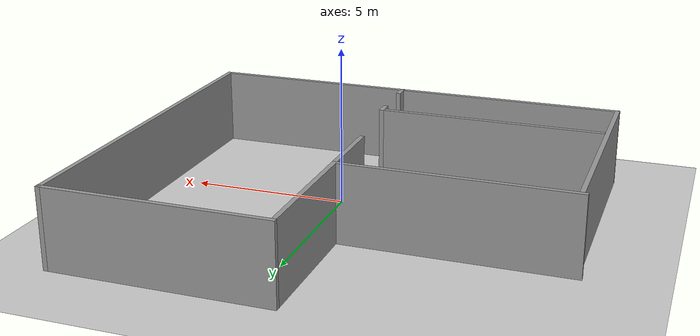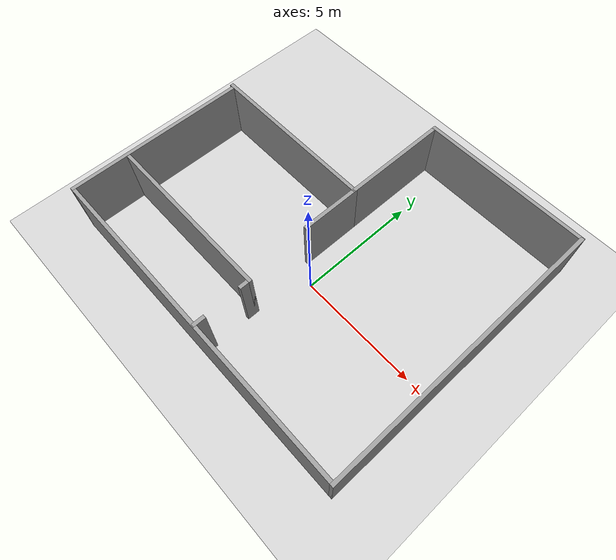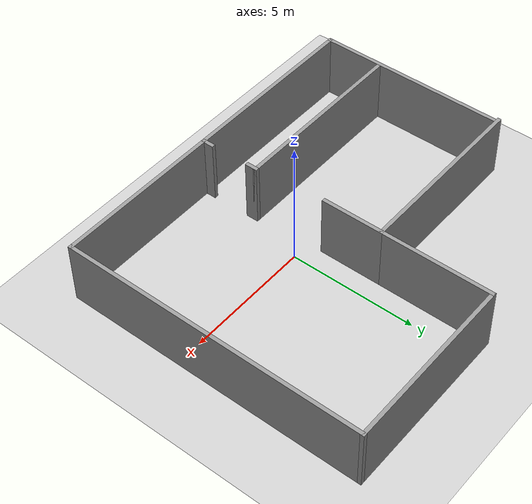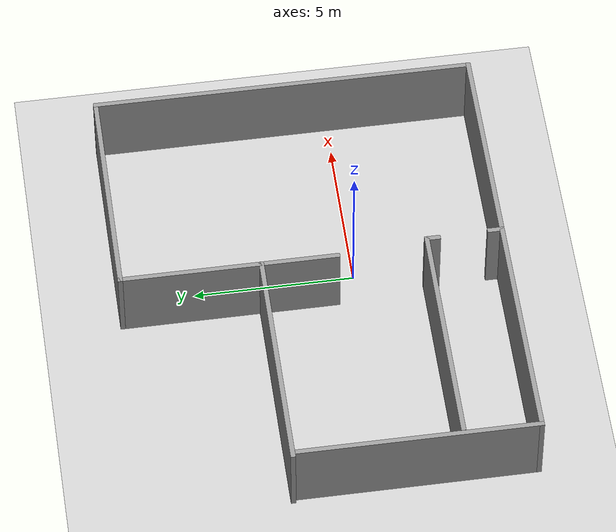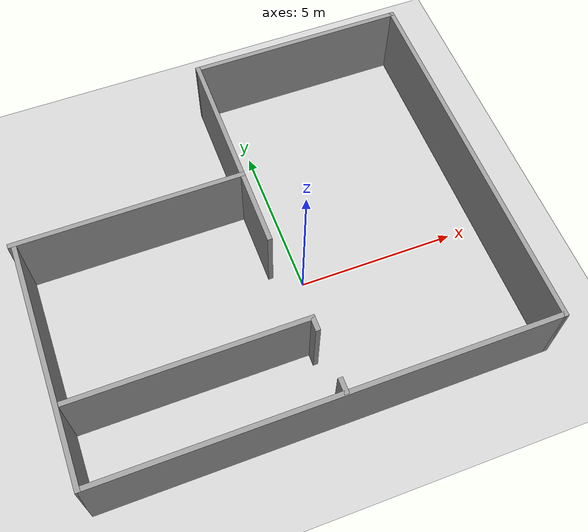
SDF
<sdf version="1.7">
 <world name="default">
  <light name="sun" type="directional">
   <pose>0 0 10 0 -0 0</pose>
   <diffuse>0.8 0.8 0.8 1</diffuse>
   <specular>0.2 0.2 0.2 1</specular>
   <attenuation>
    <range>1000</range>
    <constant>0.9</constant>
    <linear>0.01</linear>
    <quadratic>0.001</quadratic>
   </attenuation>
   <direction>-0.5 0.1 -0.9</direction>
   <spot><inner_angle>0</inner_angle><outer_angle>0</outer_angle><falloff>0</falloff></spot>
  </light>
  <model name="ground_plane">
   <static>1</static>
   <link name="link">
    <collision name="collision">
     <geometry><plane><normal>0 0 1</normal><size>100 100</size></plane></geometry>
     <surface>
      <contact><collide_bitmask>65535</collide_bitmask></contact>
      <friction><ode><mu>100</mu><mu2>50</mu2></ode></friction>
     </surface>
    </collision>
    <visual name="visual">
     <cast_shadows>0</cast_shadows>
     <geometry><plane><normal>0 0 1</normal><size>100 100</size></plane></geometry>
     <material>
      <script><uri>file://media/materials/scripts/gazebo.material</uri><name>Gazebo/Grey</name></script>
     </material>
    </visual>
   </link>
  </model>
  <gravity>0 0 -9.8</gravity>
  <magnetic_field>6e-06 2.3e-05 -4.2e-05</magnetic_field>
  <atmosphere type="adiabatic"/>
  <physics type="ode">
   <max_step_size>0.001</max_step_size>
   <real_time_factor>1</real_time_factor>
   <real_time_update_rate>1000</real_time_update_rate>
  </physics>
  <scene><ambient>0.4 0.4 0.4 1</ambient><background>0.7 0.7 0.7 1</background><shadows>1</shadows></scene>
  <spherical_coordinates>
   <surface_model>EARTH_WGS84</surface_model>
   <latitude_deg>0</latitude_deg>
   <longitude_deg>0</longitude_deg>
   <elevation>0</elevation>
   <heading_deg>0</heading_deg>
  </spherical_coordinates>
  <model name="Untitled">
   <pose>-0.982656 1.40265 0 0 -0 0</pose>
   <link name="Wall_0">
    <collision name="Wall_0_Collision">
     <geometry><box><size>14 0.15 2.5</size></box></geometry>
     <pose>0 0 1.25 0 -0 0</pose>
    </collision>
    <visual name="Wall_0_Visual">
     <pose>0 0 1.25 0 -0 0</pose>
     <geometry><box><size>14 0.15 2.5</size></box></geometry>
     <material>
      <script><uri>file://media/materials/scripts/gazebo.material</uri><name>Gazebo/Grey</name></script>
      <ambient>1 1 1 1</ambient>
     </material>
     <meta><layer>0</layer></meta>
    </visual>
    <pose>0.05 -5.925 0 0 -0 0</pose>
   </link>
   <link name="Wall_14">
    <collision name="Wall_14_Collision">
     <geometry><box><size>7.5 0.15 2.5</size></box></geometry>
     <pose>0 0 1.25 0 -0 0</pose>
    </collision>
    <visual name="Wall_14_Visual">
     <pose>0 0 1.25 0 -0 0</pose>
     <geometry><box><size>7.5 0.15 2.5</size></box></geometry>
     <material>
      <script><uri>file://media/materials/scripts/gazebo.material</uri><name>Gazebo/Grey</name></script>
      <ambient>1 1 1 1</ambient>
     </material>
     <meta><layer>0</layer></meta>
    </visual>
    <pose>-6.875 -2.25 0 0 -0 1.5708</pose>
   </link>
   <link name="Wall_17">
    <collision name="Wall_17_Collision">
     <geometry><box><size>7.25 0.15 2.5</size></box></geometry>
     <pose>0 0 1.25 0 -0 0</pose>
    </collision>
    <visual name="Wall_17_Visual">
     <pose>0 0 1.25 0 -0 0</pose>
     <geometry><box><size>7.25 0.15 2.5</size></box></geometry>
     <material>
      <script><uri>file://media/materials/scripts/gazebo.material</uri><name>Gazebo/Grey</name></script>
      <ambient>1 1 1 1</ambient>
     </material>
     <meta><layer>0</layer></meta>
    </visual>
    <pose>-3.425 1.575 0 0 -0 3.14159</pose>
   </link>
   <link name="Wall_20">
    <collision name="Wall_20_Collision">
     <geometry><box><size>7.25 0.15 2.5</size></box></geometry>
     <pose>0 0 1.25 0 -0 0</pose>
    </collision>
    <visual name="Wall_20_Visual">
     <pose>0 0 1.25 0 -0 0</pose>
     <geometry><box><size>7.25 0.15 2.5</size></box></geometry>
     <material>
      <script><uri>file://media/materials/scripts/gazebo.material</uri><name>Gazebo/Grey</name></script>
      <ambient>1 1 1 1</ambient>
     </material>
     <meta><layer>0</layer></meta>
    </visual>
    <pose>-3.16931 -3.5804 0 0 -0 3.14159</pose>
   </link>
   <link name="Wall_23">
    <collision name="Wall_23_Collision">
     <geometry><box><size>0.5 0.15 2.5</size></box></geometry>
     <pose>0 0 1.25 0 -0 0</pose>
    </collision>
    <visual name="Wall_23_Visual">
     <pose>0 0 1.25 0 -0 0</pose>
     <geometry><box><size>0.5 0.15 2.5</size></box></geometry>
     <material>
      <script><uri>file://media/materials/scripts/gazebo.material</uri><name>Gazebo/Grey</name></script>
      <ambient>1 1 1 1</ambient>
     </material>
     <meta><layer>0</layer></meta>
    </visual>
    <pose>0.380689 -3.7554 0 0 -0 -1.5708</pose>
   </link>
   <link name="Wall_25">
    <collision name="Wall_25_Collision">
     <geometry><box><size>0.5 0.15 2.5</size></box></geometry>
     <pose>0 0 1.25 0 -0 0</pose>
    </collision>
    <visual name="Wall_25_Visual">
     <pose>0 0 1.25 0 -0 0</pose>
     <geometry><box><size>0.5 0.15 2.5</size></box></geometry>
     <material>
      <script><uri>file://media/materials/scripts/gazebo.material</uri><name>Gazebo/Grey</name></script>
      <ambient>1 1 1 1</ambient>
     </material>
     <meta><layer>0</layer></meta>
    </visual>
    <pose>0.423732 -5.71892 0 0 -0 1.5708</pose>
   </link>
   <link name="Wall_27">
    <collision name="Wall_27_Collision">
     <geometry><box><size>2.5 0.15 2.5</size></box></geometry>
     <pose>0 0 1.25 0 -0 0</pose>
    </collision>
    <visual name="Wall_27_Visual">
     <pose>0 0 1.25 0 -0 0</pose>
     <geometry><box><size>2.5 0.15 2.5</size></box></geometry>
     <material>
      <script><uri>file://media/materials/scripts/gazebo.material</uri><name>Gazebo/Grey</name></script>
      <ambient>1 1 1 1</ambient>
     </material>
     <meta><layer>0</layer></meta>
    </visual>
    <pose>0.125 0.4 0 0 -0 -1.5708</pose>
   </link>
   <link name="Wall_5">
    <collision name="Wall_5_Collision">
     <geometry><box><size>12 0.15 2.5</size></box></geometry>
     <pose>0 0 1.25 0 -0 0</pose>
    </collision>
    <visual name="Wall_5_Visual">
     <pose>0 0 1.25 0 -0 0</pose>
     <geometry><box><size>12 0.15 2.5</size></box></geometry>
     <material>
      <script><uri>file://media/materials/scripts/gazebo.material</uri><name>Gazebo/Grey</name></script>
      <ambient>1 1 1 1</ambient>
     </material>
     <meta><layer>0</layer></meta>
    </visual>
    <pose>6.975 -0 0 0 -0 1.5708</pose>
   </link>
   <link name="Wall_8">
    <collision name="Wall_8_Collision">
     <geometry><box><size>7 0.15 2.5</size></box></geometry>
     <pose>0 0 1.25 0 -0 0</pose>
    </collision>
    <visual name="Wall_8_Visual">
     <pose>0 0 1.25 0 -0 0</pose>
     <geometry><box><size>7 0.15 2.5</size></box></geometry>
     <material>
      <script><uri>file://media/materials/scripts/gazebo.material</uri><name>Gazebo/Grey</name></script>
      <ambient>1 1 1 1</ambient>
     </material>
     <meta><layer>0</layer></meta>
    </visual>
    <pose>3.55 5.925 0 0 -0 3.14159</pose>
   </link>
   <link name="Wall_9">
    <collision name="Wall_9_Collision">
     <geometry><box><size>4.5 0.15 2.5</size></box></geometry>
     <pose>0 0 1.25 0 -0 0</pose>
    </collision>
    <visual name="Wall_9_Visual">
     <pose>0 0 1.25 0 -0 0</pose>
     <geometry><box><size>4.5 0.15 2.5</size></box></geometry>
     <material>
      <script><uri>file://media/materials/scripts/gazebo.material</uri><name>Gazebo/Grey</name></script>
      <ambient>1 1 1 1</ambient>
     </material>
     <meta><layer>0</layer></meta>
    </visual>
    <pose>0.125 3.75 0 0 -0 -1.5708</pose>
   </link>
   <static>1</static>
  </model>
  <audio><device>default</device></audio>
 </world>
</sdf>
